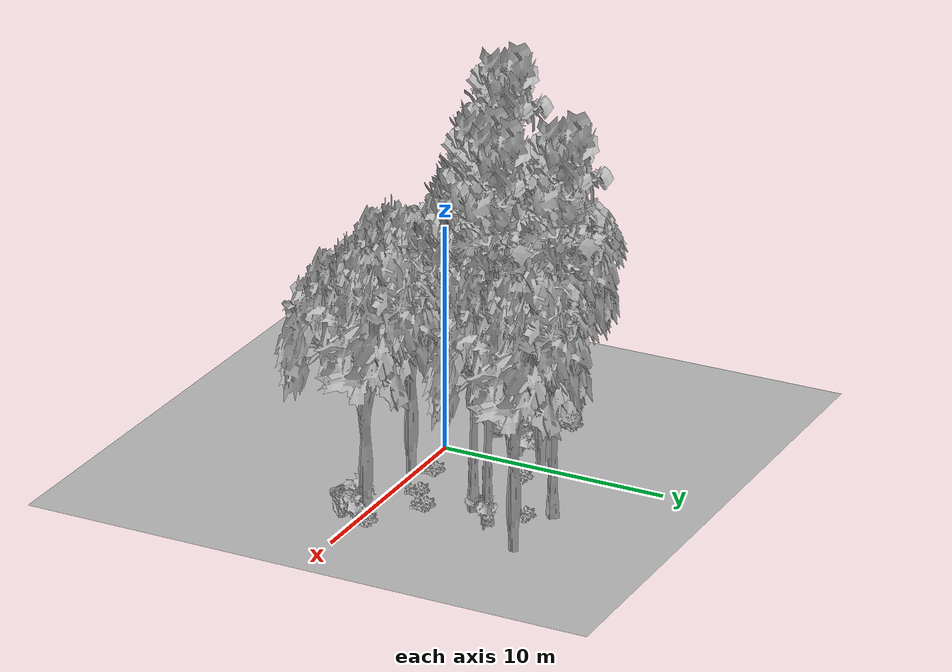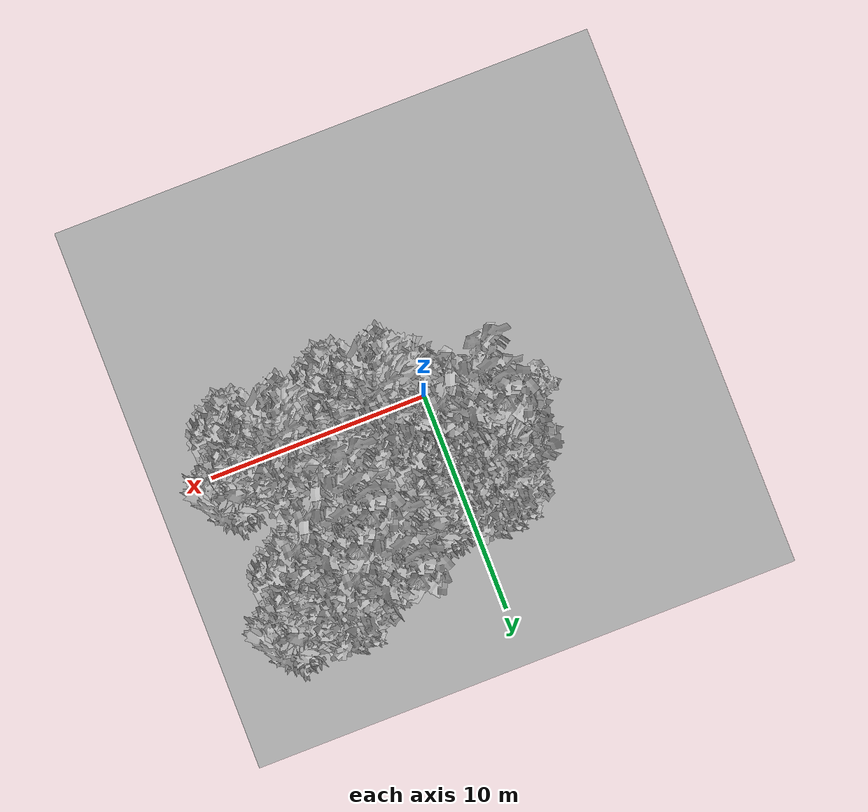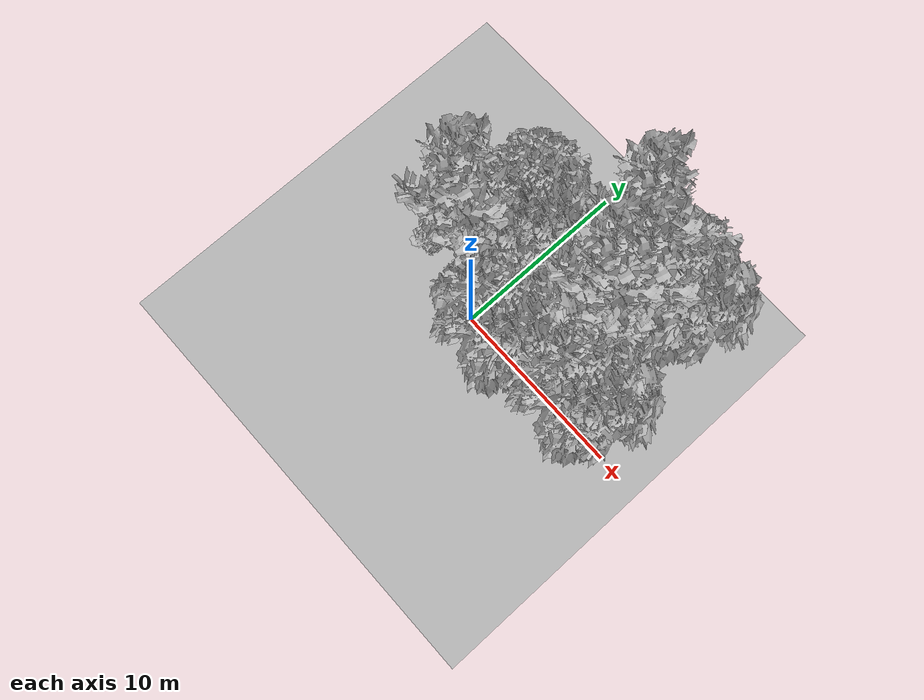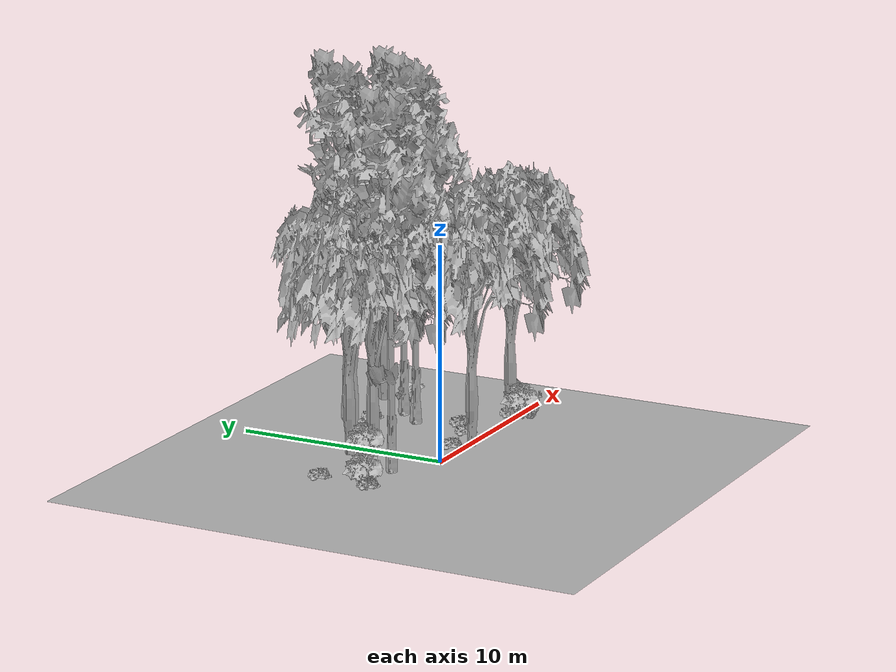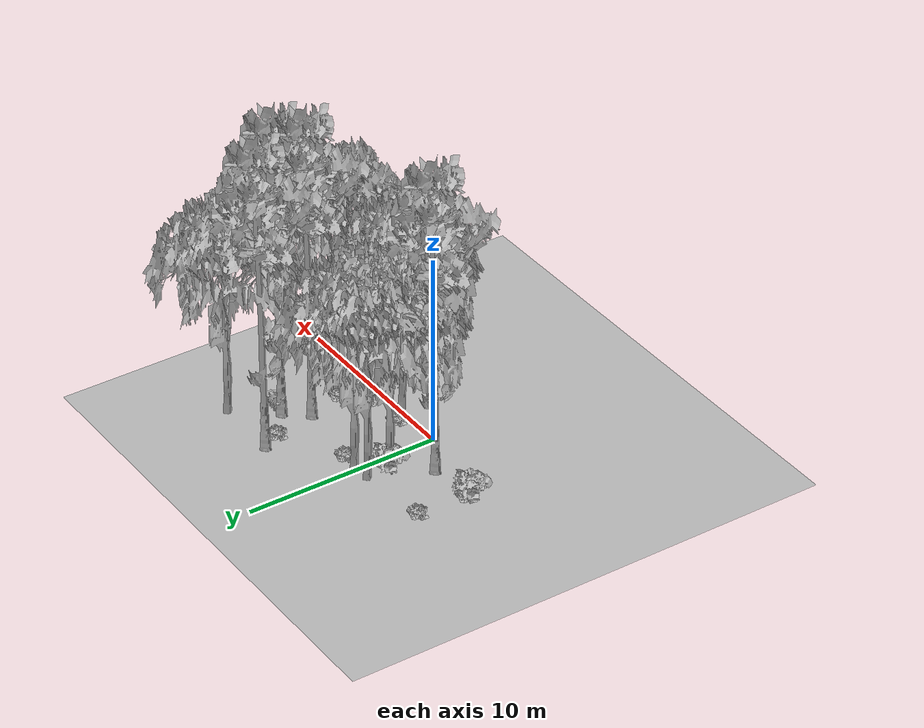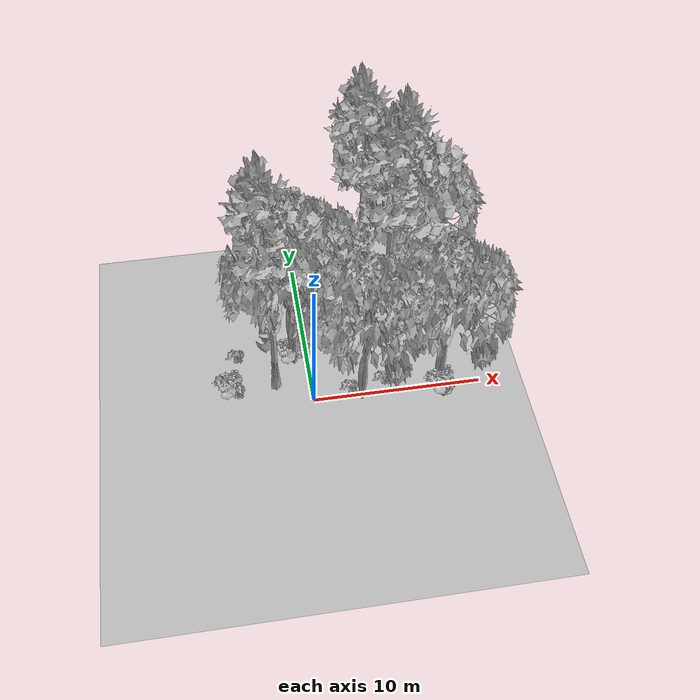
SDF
<sdf version="1.7">
 <world name="default">
  <model name="ground_plane">
   <static>1</static>
   <link name="link">
    <collision name="collision">
     <pose>-50 0 0 0 -0 0</pose>
     <geometry><plane><normal>0 0 1</normal><size>80 80</size></plane></geometry>
     <surface><contact><ode><min_depth>0.01</min_depth><max_vel>0</max_vel></ode></contact></surface>
    </collision>
    <visual name="grass">
     <cast_shadows>0</cast_shadows>
     <geometry>
      <mesh>
       <scale>0.46714285714285714 0.46714285714285714 0.1</scale>
       <uri>file://grass_plane/meshes/grass_plane.dae</uri>
      </mesh>
     </geometry>
    </visual>
   </link>
  </model>
  <model name="Tree 28">
   <static>1</static>
   <pose>-0.13650152388446912 4.405217555593211 0 1.57079 -0 0</pose>
   <link name="link">
    <collision name="collision">
     <geometry><mesh><scale>3.5 5 3.5</scale><uri>model://tree_2/meshes/tree_2.obj</uri></mesh></geometry>
    </collision>
    <visual name="visual">
     <geometry><mesh><scale>3.5 5 3.5</scale><uri>model://tree_2/meshes/tree_2.obj</uri></mesh></geometry>
    </visual>
   </link>
  </model>
  <model name="Tree 62">
   <static>1</static>
   <pose>-0.8807123184887615 4.165084423509704 0 1.57079 -0 0</pose>
   <link name="link">
    <collision name="collision">
     <geometry><mesh><scale>3.5 5 3.5</scale><uri>model://tree_2/meshes/tree_2.obj</uri></mesh></geometry>
    </collision>
    <visual name="visual">
     <geometry><mesh><scale>3.5 5 3.5</scale><uri>model://tree_2/meshes/tree_2.obj</uri></mesh></geometry>
    </visual>
   </link>
  </model>
  <model name="Tree 143">
   <static>1</static>
   <pose>7.43244284537252 0.2556423268889745 0 1.57079 -0 0</pose>
   <link name="link">
    <collision name="collision">
     <geometry><mesh><scale>3.5 5 3.5</scale><uri>model://tree_2/meshes/tree_2.obj</uri></mesh></geometry>
    </collision>
    <visual name="visual">
     <geometry><mesh><scale>3.5 5 3.5</scale><uri>model://tree_2/meshes/tree_2.obj</uri></mesh></geometry>
    </visual>
   </link>
  </model>
  <model name="Tree 272">
   <static>1</static>
   <pose>3.7879059149889756 6.838154733658364 0 1.57079 -0 0</pose>
   <link name="link">
    <collision name="collision">
     <geometry><mesh><scale>3.5 5 3.5</scale><uri>model://tree_9/meshes/tree_9.obj</uri></mesh></geometry>
    </collision>
    <visual name="visual">
     <geometry><mesh><scale>3.5 5 3.5</scale><uri>model://tree_9/meshes/tree_9.obj</uri></mesh></geometry>
    </visual>
   </link>
  </model>
  <model name="Tree 316">
   <static>1</static>
   <pose>5.630417666750425 4.809122094928938 0 1.57079 -0 0</pose>
   <link name="link">
    <collision name="collision">
     <geometry><mesh><scale>3.5 5 3.5</scale><uri>model://tree_9/meshes/tree_9.obj</uri></mesh></geometry>
    </collision>
    <visual name="visual">
     <geometry><mesh><scale>3.5 5 3.5</scale><uri>model://tree_9/meshes/tree_9.obj</uri></mesh></geometry>
    </visual>
   </link>
  </model>
  <model name="Tree 351">
   <static>1</static>
   <pose>4.714773332262467 3.713755381895105 0 1.57079 -0 0</pose>
   <link name="link">
    <collision name="collision">
     <geometry><mesh><scale>3.5 5 3.5</scale><uri>model://tree_9/meshes/tree_9.obj</uri></mesh></geometry>
    </collision>
    <visual name="visual">
     <geometry><mesh><scale>3.5 5 3.5</scale><uri>model://tree_9/meshes/tree_9.obj</uri></mesh></geometry>
    </visual>
   </link>
  </model>
  <model name="Tree 411">
   <static>1</static>
   <pose>-2.110183809936501 1.3280050883614365 0 1.57079 -0 0</pose>
   <link name="link">
    <collision name="collision">
     <geometry><mesh><scale>3.5 5 3.5</scale><uri>model://tree_9/meshes/tree_9.obj</uri></mesh></geometry>
    </collision>
    <visual name="visual">
     <geometry><mesh><scale>3.5 5 3.5</scale><uri>model://tree_9/meshes/tree_9.obj</uri></mesh></geometry>
    </visual>
   </link>
  </model>
  <model name="Tree 604">
   <static>1</static>
   <pose>7.152993911297834 6.769995944480051 0 1.57079 -0 0</pose>
   <link name="link">
    <collision name="collision">
     <geometry><mesh><scale>3.5 5 3.5</scale><uri>model://tree_2/meshes/tree_2.obj</uri></mesh></geometry>
    </collision>
    <visual name="visual">
     <geometry><mesh><scale>3.5 5 3.5</scale><uri>model://tree_2/meshes/tree_2.obj</uri></mesh></geometry>
    </visual>
   </link>
  </model>
  <model name="Tree 608">
   <static>1</static>
   <pose>2.7538417679802905 -0.12831914730318772 0 1.57079 -0 0</pose>
   <link name="link">
    <collision name="collision">
     <geometry><mesh><scale>3.5 5 3.5</scale><uri>model://tree_2/meshes/tree_2.obj</uri></mesh></geometry>
    </collision>
    <visual name="visual">
     <geometry><mesh><scale>3.5 5 3.5</scale><uri>model://tree_2/meshes/tree_2.obj</uri></mesh></geometry>
    </visual>
   </link>
  </model>
  <model name="Tree 619">
   <static>1</static>
   <pose>-0.8850856588216658 2.9602370242978253 0 1.57079 -0 0</pose>
   <link name="link">
    <collision name="collision">
     <geometry><mesh><scale>3.5 5 3.5</scale><uri>model://tree_2/meshes/tree_2.obj</uri></mesh></geometry>
    </collision>
    <visual name="visual">
     <geometry><mesh><scale>3.5 5 3.5</scale><uri>model://tree_2/meshes/tree_2.obj</uri></mesh></geometry>
    </visual>
   </link>
  </model>
  <model name="Bush 96">
   <static>1</static>
   <pose>-1.1115190622832856 3.0508920119802525 0 1.57079 -0 0</pose>
   <link name="link">
    <collision name="collision">
     <geometry><mesh><scale>2 2 2</scale><uri>model://bush_1/meshes/bush_1.obj</uri></mesh></geometry>
     <surface><contact><collide_without_contact>false</collide_without_contact></contact></surface>
    </collision>
    <visual name="visual">
     <geometry><mesh><scale>2 2 2</scale><uri>model://bush_1/meshes/bush_1.obj</uri></mesh></geometry>
    </visual>
   </link>
  </model>
  <model name="Bush 97">
   <static>1</static>
   <pose>2.2335894932972593 0.5776426620822974 0 1.57079 -0 0</pose>
   <link name="link">
    <collision name="collision">
     <geometry><mesh><scale>2 2 2</scale><uri>model://bush_2/meshes/bush_2.obj</uri></mesh></geometry>
     <surface><contact><collide_without_contact>false</collide_without_contact></contact></surface>
    </collision>
    <visual name="visual">
     <geometry><mesh><scale>2 2 2</scale><uri>model://bush_2/meshes/bush_2.obj</uri></mesh></geometry>
    </visual>
   </link>
  </model>
  <model name="Bush 139">
   <static>1</static>
   <pose>-4.899626827443058 1.0766832588327517 0 1.57079 -0 0</pose>
   <link name="link">
    <collision name="collision">
     <geometry><mesh><scale>2 2 2</scale><uri>model://bush_1/meshes/bush_1.obj</uri></mesh></geometry>
     <surface><contact><collide_without_contact>false</collide_without_contact></contact></surface>
    </collision>
    <visual name="visual">
     <geometry><mesh><scale>2 2 2</scale><uri>model://bush_1/meshes/bush_1.obj</uri></mesh></geometry>
    </visual>
   </link>
  </model>
  <model name="Bush 157">
   <static>1</static>
   <pose>4.298920471852703 0.921246211719648 0 1.57079 -0 0</pose>
   <link name="link">
    <collision name="collision">
     <geometry><mesh><scale>2 2 2</scale><uri>model://bush_2/meshes/bush_2.obj</uri></mesh></geometry>
     <surface><contact><collide_without_contact>false</collide_without_contact></contact></surface>
    </collision>
    <visual name="visual">
     <geometry><mesh><scale>2 2 2</scale><uri>model://bush_2/meshes/bush_2.obj</uri></mesh></geometry>
    </visual>
   </link>
  </model>
  <model name="Bush 194">
   <static>1</static>
   <pose>-4.336235649747934 3.7391640555658654 0 1.57079 -0 0</pose>
   <link name="link">
    <collision name="collision">
     <geometry><mesh><scale>2 2 2</scale><uri>model://bush_2/meshes/bush_2.obj</uri></mesh></geometry>
     <surface><contact><collide_without_contact>false</collide_without_contact></contact></surface>
    </collision>
    <visual name="visual">
     <geometry><mesh><scale>2 2 2</scale><uri>model://bush_2/meshes/bush_2.obj</uri></mesh></geometry>
    </visual>
   </link>
  </model>
  <model name="Bush 374">
   <static>1</static>
   <pose>5.385454515085343 1.751239830735507 0 1.57079 -0 0</pose>
   <link name="link">
    <collision name="collision">
     <geometry><mesh><scale>2 2 2</scale><uri>model://bush_2/meshes/bush_2.obj</uri></mesh></geometry>
     <surface><contact><collide_without_contact>false</collide_without_contact></contact></surface>
    </collision>
    <visual name="visual">
     <geometry><mesh><scale>2 2 2</scale><uri>model://bush_2/meshes/bush_2.obj</uri></mesh></geometry>
    </visual>
   </link>
  </model>
  <model name="Bush 447">
   <static>1</static>
   <pose>7.710888201228762 -0.7311394880254269 0 1.57079 -0 0</pose>
   <link name="link">
    <collision name="collision">
     <geometry><mesh><scale>2 2 2</scale><uri>model://bush_4/meshes/bush_4.obj</uri></mesh></geometry>
     <surface><contact><collide_without_contact>false</collide_without_contact></contact></surface>
    </collision>
    <visual name="visual">
     <geometry><mesh><scale>2 2 2</scale><uri>model://bush_4/meshes/bush_4.obj</uri></mesh></geometry>
    </visual>
   </link>
  </model>
  <model name="Bush 487">
   <static>1</static>
   <pose>6.147721704373211 4.905453345951152 0 1.57079 -0 0</pose>
   <link name="link">
    <collision name="collision">
     <geometry><mesh><scale>2 2 2</scale><uri>model://bush_0/meshes/bush_0.obj</uri></mesh></geometry>
     <surface><contact><collide_without_contact>false</collide_without_contact></contact></surface>
    </collision>
    <visual name="visual">
     <geometry><mesh><scale>2 2 2</scale><uri>model://bush_0/meshes/bush_0.obj</uri></mesh></geometry>
    </visual>
   </link>
  </model>
  <model name="Bush 495">
   <static>1</static>
   <pose>7.687326874819796 0.3152302225022723 0 1.57079 -0 0</pose>
   <link name="link">
    <collision name="collision">
     <geometry><mesh><scale>2 2 2</scale><uri>model://bush_2/meshes/bush_2.obj</uri></mesh></geometry>
     <surface><contact><collide_without_contact>false</collide_without_contact></contact></surface>
    </collision>
    <visual name="visual">
     <geometry><mesh><scale>2 2 2</scale><uri>model://bush_2/meshes/bush_2.obj</uri></mesh></geometry>
    </visual>
   </link>
  </model>
  <model name="Bush 517">
   <static>1</static>
   <pose>7.500810340795276 -0.41200726132353793 0 1.57079 -0 0</pose>
   <link name="link">
    <collision name="collision">
     <geometry><mesh><scale>2 2 2</scale><uri>model://bush_1/meshes/bush_1.obj</uri></mesh></geometry>
     <surface><contact><collide_without_contact>false</collide_without_contact></contact></surface>
    </collision>
    <visual name="visual">
     <geometry><mesh><scale>2 2 2</scale><uri>model://bush_1/meshes/bush_1.obj</uri></mesh></geometry>
    </visual>
   </link>
  </model>
  <model name="Bush 545">
   <static>1</static>
   <pose>4.372399540712152 5.8057774946664225 0 1.57079 -0 0</pose>
   <link name="link">
    <collision name="collision">
     <geometry><mesh><scale>2 2 2</scale><uri>model://bush_2/meshes/bush_2.obj</uri></mesh></geometry>
     <surface><contact><collide_without_contact>false</collide_without_contact></contact></surface>
    </collision>
    <visual name="visual">
     <geometry><mesh><scale>2 2 2</scale><uri>model://bush_2/meshes/bush_2.obj</uri></mesh></geometry>
    </visual>
   </link>
  </model>
  <model name="Bush 588">
   <static>1</static>
   <pose>-4.520826081356404 1.2014492648055963 0 1.57079 -0 0</pose>
   <link name="link">
    <collision name="collision">
     <geometry><mesh><scale>2 2 2</scale><uri>model://bush_2/meshes/bush_2.obj</uri></mesh></geometry>
     <surface><contact><collide_without_contact>false</collide_without_contact></contact></surface>
    </collision>
    <visual name="visual">
     <geometry><mesh><scale>2 2 2</scale><uri>model://bush_2/meshes/bush_2.obj</uri></mesh></geometry>
    </visual>
   </link>
  </model>
  <model name="Bush 593">
   <static>1</static>
   <pose>1.1880290319381501 4.103908289840405 0 1.57079 -0 0</pose>
   <link name="link">
    <collision name="collision">
     <geometry><mesh><scale>2 2 2</scale><uri>model://bush_2/meshes/bush_2.obj</uri></mesh></geometry>
     <surface><contact><collide_without_contact>false</collide_without_contact></contact></surface>
    </collision>
    <visual name="visual">
     <geometry><mesh><scale>2 2 2</scale><uri>model://bush_2/meshes/bush_2.obj</uri></mesh></geometry>
    </visual>
   </link>
  </model>
 </world>
</sdf>
